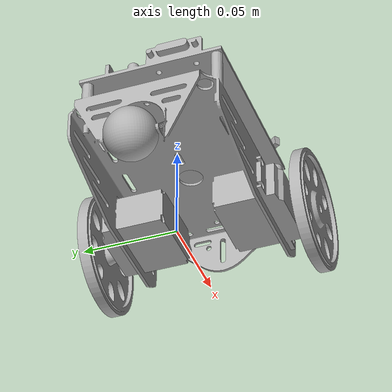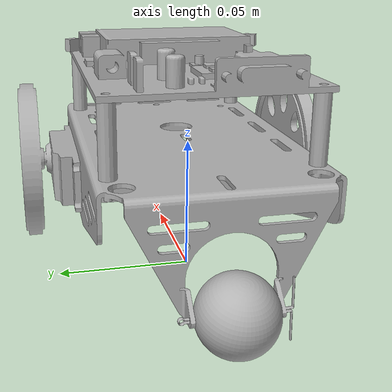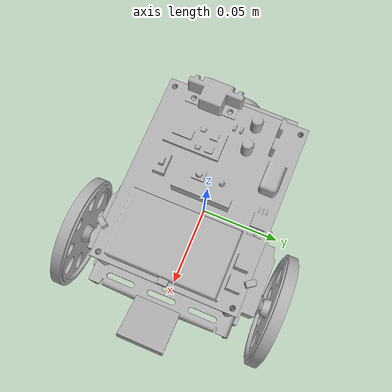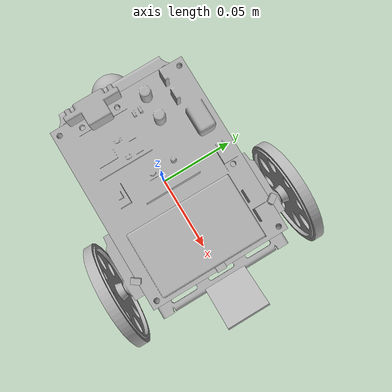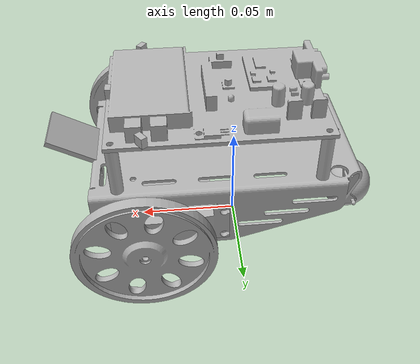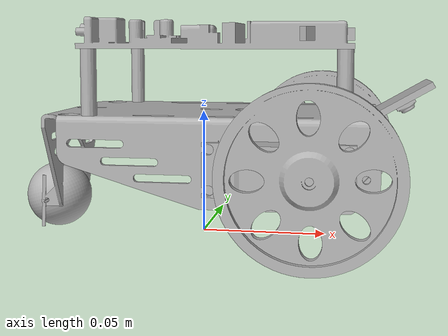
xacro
<?xml version="1.0" ?>
<robot name="boebot" xmlns:xacro="http://www.ros.org/wiki/xacro">

<xacro:include filename="$(find boebot_description)/urdf/materials.xacro" />
<xacro:include filename="$(find boebot_description)/urdf/boebot.trans" />
<xacro:include filename="$(find boebot_description)/urdf/boebot.gazebo" />

<link name="base_link">
  <inertial>
    <origin rpy="0 0 0" xyz="0.0070625612279852845 -6.874357865283451e-06 0.04574754124785928"/>
    <mass value="0.20308165049164978"/>
    <inertia ixx="0.000187" ixy="-0.0" ixz="-1e-06" iyy="0.000368" iyz="-0.0" izz="0.00051"/>
  </inertial>
  <visual>
    <origin rpy="0 0 0" xyz="0 0 0"/>
    <geometry>
      <mesh filename="package://boebot_description/meshes/base_link.stl" scale="0.001 0.001 0.001"/>
    </geometry>
    <material name="silver"/>
  </visual>
  <collision>
    <origin rpy="0 0 0" xyz="0 0 0"/>
    <geometry>
      <mesh filename="package://boebot_description/meshes/base_link.stl" scale="0.001 0.001 0.001"/>
    </geometry>
  </collision>
</link>

<link name="motor_right_1">
  <inertial>
    <origin rpy="0 0 0" xyz="-0.019672257084668257 0.008154203088266192 -2.8105041564863154e-07"/>
    <mass value="0.23215241019968272"/>
    <inertia ixx="3.3e-05" ixy="1e-06" ixz="0.0" iyy="4e-05" iyz="0.0" izz="5.8e-05"/>
  </inertial>
  <visual>
    <origin rpy="0 0 0" xyz="-0.0545 0.04 -0.032207"/>
    <geometry>
      <mesh filename="package://boebot_description/meshes/motor_right_1.stl" scale="0.001 0.001 0.001"/>
    </geometry>
    <material name="silver"/>
  </visual>
  <collision>
    <origin rpy="0 0 0" xyz="-0.0545 0.04 -0.032207"/>
    <geometry>
      <mesh filename="package://boebot_description/meshes/motor_right_1.stl" scale="0.001 0.001 0.001"/>
    </geometry>
  </collision>
</link>

<link name="motor_left_1">
  <inertial>
    <origin rpy="0 0 0" xyz="-0.019672257084668195 -0.00815420308826622 -2.8105041564863154e-07"/>
    <mass value="0.23215241019968264"/>
    <inertia ixx="3.3e-05" ixy="-1e-06" ixz="0.0" iyy="4e-05" iyz="-0.0" izz="5.8e-05"/>
  </inertial>
  <visual>
    <origin rpy="0 0 0" xyz="-0.0545 -0.04 -0.032207"/>
    <geometry>
      <mesh filename="package://boebot_description/meshes/motor_left_1.stl" scale="0.001 0.001 0.001"/>
    </geometry>
    <material name="silver"/>
  </visual>
  <collision>
    <origin rpy="0 0 0" xyz="-0.0545 -0.04 -0.032207"/>
    <geometry>
      <mesh filename="package://boebot_description/meshes/motor_left_1.stl" scale="0.001 0.001 0.001"/>
    </geometry>
  </collision>
</link>

<link name="caster_1">
  <inertial>
    <origin rpy="0 0 0" xyz="3.9442278650103635e-07 0.013416407866003247 -2.4895176421041443e-07"/>
    <mass value="0.07940850571968437"/>
    <inertia ixx="6e-06" ixy="-0.0" ixz="0.0" iyy="6e-06" iyz="-0.0" izz="6e-06"/>
  </inertial>
  <visual>
    <origin rpy="0 0 0" xyz="0.063167 0.0135 -0.013506"/>
    <geometry>
      <mesh filename="package://boebot_description/meshes/caster_1.stl" scale="0.001 0.001 0.001"/>
    </geometry>
    <material name="silver"/>
  </visual>
  <collision>
    <origin rpy="0 0 0" xyz="0.063167 0.0135 -0.013506"/>
    <geometry>
      <mesh filename="package://boebot_description/meshes/caster_1.stl" scale="0.001 0.001 0.001"/>
    </geometry>
  </collision>
</link>

<link name="arduino_1">
  <inertial>
    <origin rpy="0 0 0" xyz="-0.03893013827845351 0.03468787507540039 0.004002916570544371"/>
    <mass value="0.04221819460006796"/>
    <inertia ixx="1.7e-05" ixy="-1e-06" ixz="-1e-06" iyy="3.8e-05" iyz="-0.0" izz="5.4e-05"/>
  </inertial>
  <visual>
    <origin rpy="0 0 0" xyz="-0.0575 0.035 -0.075707"/>
    <geometry>
      <mesh filename="package://boebot_description/meshes/arduino_1.stl" scale="0.001 0.001 0.001"/>
    </geometry>
    <material name="silver"/>
  </visual>
  <collision>
    <origin rpy="0 0 0" xyz="-0.0575 0.035 -0.075707"/>
    <geometry>
      <mesh filename="package://boebot_description/meshes/arduino_1.stl" scale="0.001 0.001 0.001"/>
    </geometry>
  </collision>
</link>

<link name="obstacle_sensor_1">
  <inertial>
    <origin rpy="0 0 0" xyz="0.0014998834009434178 -2.6259291547496913e-07 -2.8105041563475375e-07"/>
    <mass value="0.0005887499999999996"/>
    <inertia ixx="0.0" ixy="0.0" ixz="-0.0" iyy="0.0" iyz="0.0" izz="0.0"/>
  </inertial>
  <visual>
    <origin rpy="0 0 0" xyz="-0.057833 0.002449 -0.081207"/>
    <geometry>
      <mesh filename="package://boebot_description/meshes/obstacle_sensor_1.stl" scale="0.001 0.001 0.001"/>
    </geometry>
    <material name="silver"/>
  </visual>
  <collision>
    <origin rpy="0 0 0" xyz="-0.057833 0.002449 -0.081207"/>
    <geometry>
      <mesh filename="package://boebot_description/meshes/obstacle_sensor_1.stl" scale="0.001 0.001 0.001"/>
    </geometry>
  </collision>
</link>

<link name="obstacle_sensor_left">
  <inertial>
    <origin rpy="0 0 0" xyz="0.0014998834009434178 -2.6259291547496913e-07 -2.8105041563475375e-07"/>
    <mass value="0.0005887499999999996"/>
    <inertia ixx="0.0" ixy="0.0" ixz="-0.0" iyy="0.0" iyz="0.0" izz="0.0"/>
  </inertial>
  <visual>
    <origin rpy="0 0 0" xyz="-0.057833 0.002449 -0.081207"/>
    <geometry>
      <mesh filename="package://boebot_description/meshes/obstacle_sensor_1.stl" scale="0.001 0.001 0.001"/>
    </geometry>
    <material name="silver"/>
  </visual>
  <collision>
    <origin rpy="0 0 0" xyz="-0.057833 0.002449 -0.081207"/>
    <geometry>
      <mesh filename="package://boebot_description/meshes/obstacle_sensor_1.stl" scale="0.001 0.001 0.001"/>
    </geometry>
  </collision>
</link>

<link name="obstacle_sensor_right">
  <inertial>
    <origin rpy="0 0 0" xyz="0.0014998834009434178 -2.6259291547496913e-07 -2.8105041563475375e-07"/>
    <mass value="0.0005887499999999996"/>
    <inertia ixx="0.0" ixy="0.0" ixz="-0.0" iyy="0.0" iyz="0.0" izz="0.0"/>
  </inertial>
  <visual>
    <origin rpy="0 0 0" xyz="-0.057833 0.002449 -0.081207"/>
    <geometry>
      <mesh filename="package://boebot_description/meshes/obstacle_sensor_1.stl" scale="0.001 0.001 0.001"/>
    </geometry>
    <material name="silver"/>
  </visual>
  <collision>
    <origin rpy="0 0 0" xyz="-0.057833 0.002449 -0.081207"/>
    <geometry>
      <mesh filename="package://boebot_description/meshes/obstacle_sensor_1.stl" scale="0.001 0.001 0.001"/>
    </geometry>
  </collision>
</link>

<link name="camera_1">
  <inertial>
    <origin rpy="0 0 0" xyz="0.001557194993891009 4.099625037096615e-13 -2.8105041563475375e-07"/>
    <mass value="0.0014423114923478612"/>
    <inertia ixx="0.0" ixy="0.0" ixz="-0.0" iyy="0.0" iyz="-0.0" izz="0.0"/>
  </inertial>
  <visual>
    <origin rpy="0 0 0" xyz="-0.070763 0.0 -0.063207"/>
    <geometry>
      <mesh filename="package://boebot_description/meshes/camera_1.stl" scale="0.001 0.001 0.001"/>
    </geometry>
    <material name="silver"/>
  </visual>
  <collision>
    <origin rpy="0 0 0" xyz="-0.070763 0.0 -0.063207"/>
    <geometry>
      <mesh filename="package://boebot_description/meshes/camera_1.stl" scale="0.001 0.001 0.001"/>
    </geometry>
  </collision>
</link>

<link name="wheel_left_1">
  <inertial>
    <origin rpy="0 0 0" xyz="4.959898559711573e-07 -0.005543299964448488 -2.788678334572636e-07"/>
    <mass value="0.08985319146989384"/>
    <inertia ixx="2.7e-05" ixy="0.0" ixz="0.0" iyy="5.4e-05" iyz="0.0" izz="2.7e-05"/>
  </inertial>
  <visual>
    <origin rpy="0 0 0" xyz="-0.04638 0.0525 -0.032207"/>
    <geometry>
      <mesh filename="package://boebot_description/meshes/wheel_left_1.stl" scale="0.001 0.001 0.001"/>
    </geometry>
    <material name="silver"/>
  </visual>
  <collision>
    <origin rpy="0 0 0" xyz="-0.04638 0.0525 -0.032207"/>
    <geometry>
      <mesh filename="package://boebot_description/meshes/wheel_left_1.stl" scale="0.001 0.001 0.001"/>
    </geometry>
  </collision>
</link>

<link name="wheel_right_1">
  <inertial>
    <origin rpy="0 0 0" xyz="4.932761595438651e-07 0.005543351469859702 -2.8066909178031674e-07"/>
    <mass value="0.08985616844400865"/>
    <inertia ixx="2.7e-05" ixy="0.0" ixz="-0.0" iyy="5.4e-05" iyz="0.0" izz="2.7e-05"/>
  </inertial>
  <visual>
    <origin rpy="0 0 0" xyz="-0.04638 -0.0525 -0.032207"/>
    <geometry>
      <mesh filename="package://boebot_description/meshes/wheel_right_1.stl" scale="0.001 0.001 0.001"/>
    </geometry>
    <material name="silver"/>
  </visual>
  <collision>
    <origin rpy="0 0 0" xyz="-0.04638 -0.0525 -0.032207"/>
    <geometry>
      <mesh filename="package://boebot_description/meshes/wheel_right_1.stl" scale="0.001 0.001 0.001"/>
    </geometry>
  </collision>
</link>

<link name="camera_circuit_1">
  <inertial>
    <origin rpy="0 0 0" xyz="0.0012503999999999987 -6.277294225387258e-17 0.012499718949584362"/>
    <mass value="0.012265624999999999"/>
    <inertia ixx="1e-06" ixy="0.0" ixz="0.0" iyy="1e-06" iyz="-0.0" izz="1e-06"/>
  </inertial>
  <visual>
    <origin rpy="0 0 0" xyz="-0.068263 0.0 -0.050707"/>
    <geometry>
      <mesh filename="package://boebot_description/meshes/camera_circuit_1.stl" scale="0.001 0.001 0.001"/>
    </geometry>
    <material name="silver"/>
  </visual>
  <collision>
    <origin rpy="0 0 0" xyz="-0.068263 0.0 -0.050707"/>
    <geometry>
      <mesh filename="package://boebot_description/meshes/camera_circuit_1.stl" scale="0.001 0.001 0.001"/>
    </geometry>
  </collision>
</link>

<joint name="Rigid12" type="fixed">
  <origin rpy="0 0 0" xyz="0.0545 -0.04 0.032207"/>
  <parent link="base_link"/>
  <child link="motor_right_1"/>
</joint>

<joint name="Rigid13" type="fixed">
  <origin rpy="0 0 0" xyz="0.0545 0.04 0.032207"/>
  <parent link="base_link"/>
  <child link="motor_left_1"/>
</joint>

<joint name="Rigid14" type="fixed">
  <origin rpy="0 0 0" xyz="-0.063167 -0.0135 0.013506"/>
  <parent link="base_link"/>
  <child link="caster_1"/>
</joint>

<joint name="Rigid15" type="fixed">
  <origin rpy="0 0 0" xyz="0.0575 -0.035 0.075707"/>
  <parent link="base_link"/>
  <child link="arduino_1"/>
</joint>

<joint name="Rigid16" type="fixed">
  <origin rpy="0 0 0" xyz="0.000333 0.035051 0.0055"/>
  <parent link="arduino_1"/>
  <child link="obstacle_sensor_1"/>
</joint>

<joint name="Rigid26" type="fixed">
  <origin rpy="0 0 0.628319" xyz="-0.014667 0.072551 0.0055"/>
  <parent link="arduino_1"/>
  <child link="obstacle_sensor_left"/>
</joint>

<joint name="Rigid36" type="fixed">
  <origin rpy="0 0 -0.628319" xyz="-0.014667 -0.002449 0.0055"/>
  <parent link="arduino_1"/>
  <child link="obstacle_sensor_right"/>
</joint>

<joint name="Rigid17" type="fixed">
  <origin rpy="0 0 0" xyz="0.0025 0.0 0.0125"/>
  <parent link="camera_circuit_1"/>
  <child link="camera_1"/>
</joint>

<joint name="rev_right" type="continuous">
  <origin rpy="0 0 0" xyz="-0.00812 -0.0125 0.0"/>
  <parent link="motor_right_1"/>
  <child link="wheel_left_1"/>
  <axis xyz="-0.0 1.0 0.0"/>
</joint>

<joint name="rev_left" type="continuous">
  <origin rpy="0 0 0" xyz="-0.00812 0.0125 0.0"/>
  <parent link="motor_left_1"/>
  <child link="wheel_right_1"/>
  <axis xyz="0.0 1.0 0.0"/>
</joint>

<joint name="Rigid20" type="fixed">
  <origin rpy="0 1.0472 0" xyz="0.068263 0.0 0.050707"/>
  <parent link="base_link"/>
  <child link="camera_circuit_1"/>
</joint>

</robot>

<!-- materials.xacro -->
<robot name="boebot" xmlns:xacro="http://www.ros.org/wiki/xacro" >

<material name="silver">
  <color rgba="0.700 0.700 0.700 1.000"/>
</material>

</robot>

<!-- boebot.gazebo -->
<robot name="boebot" xmlns:xacro="http://www.ros.org/wiki/xacro" >

<xacro:property name="body_color" value="Gazebo/Grey" />
<xacro:property name="motor_color" value="Gazebo/DarkGrey" />
<xacro:property name="wheel_color" value="Gazebo/Black" />
<xacro:property name="circuit_color" value="Gazebo/Green" />
<xacro:property name="sensor_color" value="Gazebo/Blue" />

<gazebo>
  <plugin filename="libgazebo_ros_control.so" name="control"/>
</gazebo>

<gazebo reference="base_link">
  <material>${body_color}</material>
  <mu1>0.2</mu1>
  <mu2>0.2</mu2>
  <selfCollide>true</selfCollide>
  <gravity>true</gravity>
</gazebo>

<gazebo reference="motor_right_1">
  <material>${motor_color}</material>
  <mu1>0.2</mu1>
  <mu2>0.2</mu2>
  <selfCollide>true</selfCollide>
</gazebo>

<gazebo reference="motor_left_1">
  <material>${motor_color}</material>
  <mu1>0.2</mu1>
  <mu2>0.2</mu2>
  <selfCollide>true</selfCollide>
</gazebo>

<gazebo reference="caster_1">
  <material>${wheel_color}</material>
  <mu1>0.1</mu1>
  <mu2>0.1</mu2>
  <selfCollide>true</selfCollide>
</gazebo>

<gazebo reference="arduino_1">
  <material>${circuit_color}</material>
  <mu1>0.2</mu1>
  <mu2>0.2</mu2>
  <selfCollide>true</selfCollide>
</gazebo>

<gazebo reference="obstacle_sensor_1">
  <material>${sensor_color}</material>
  <mu1>0.2</mu1>
  <mu2>0.2</mu2>
  <selfCollide>true</selfCollide>
</gazebo>

<gazebo reference="obstacle_sensor_left">
  <material>${sensor_color}</material>
  <mu1>0.2</mu1>
  <mu2>0.2</mu2>
  <selfCollide>true</selfCollide>
</gazebo>

<gazebo reference="obstacle_sensor_right">
  <material>${sensor_color}</material>
  <mu1>0.2</mu1>
  <mu2>0.2</mu2>
  <selfCollide>true</selfCollide>
</gazebo>

<gazebo reference="camera_1">
  <material>${wheel_color}</material>
  <mu1>0.2</mu1>
  <mu2>0.2</mu2>
  <selfCollide>true</selfCollide>
</gazebo>

<gazebo reference="wheel_left_1">
  <material>${wheel_color}</material>
  <mu1>1000.0</mu1>
  <mu2>1000.0</mu2>
  <selfCollide>true</selfCollide>
</gazebo>

<gazebo reference="wheel_right_1">
  <material>${wheel_color}</material>
  <mu1>1000.0</mu1>
  <mu2>1000.0</mu2>
  <selfCollide>true</selfCollide>
</gazebo>

<gazebo reference="camera_circuit_1">
  <material>${circuit_color}</material>
  <mu1>0.2</mu1>
  <mu2>0.2</mu2>
  <selfCollide>true</selfCollide>
</gazebo>

<gazebo>
    <plugin name="differential_drive_controller" filename="libgazebo_ros_diff_drive.so">
      <updateRate>20</updateRate>
      <robotBaseFrame>base_link</robotBaseFrame>
      <leftJoint>rev_left</leftJoint>
      <rightJoint>rev_right</rightJoint>
      <wheelSeparation>0.116</wheelSeparation>
      <wheelDiameter>0.065</wheelDiameter>
      <wheelAcceleration>1.0</wheelAcceleration>
      <wheelTorque>20</wheelTorque>
      <commandTopic>cmd_vel</commandTopic>
      <odometryTopic>odom</odometryTopic>
      <odometryFrame>odom</odometryFrame>
      <odometrySource>1</odometrySource>
      <publishWheelTF>false</publishWheelTF>
      <publishOdomTF>true</publishOdomTF>
      <publishOdom>true</publishOdom>
      <publishWheelJointState>true</publishWheelJointState>
      <legacyMode>false</legacyMode>
      <alwaysOn>true</alwaysOn>
    </plugin>
  </gazebo>

  <gazebo reference="camera_1">
    <sensor type="camera" name="camera">
      <update_rate>30.0</update_rate>
      <camera name="head">
        <horizontal_fov>1.3962634</horizontal_fov>
        <image>
          <width>800</width>
          <height>800</height>
          <format>R8G8B8</format>
        </image>
        <clip>
          <near>0.02</near>
          <far>300</far>
        </clip>
        <noise>
          <type>gaussian</type>
          <mean>0.0</mean>
          <stddev>0.007</stddev>
        </noise>
      </camera>
      <plugin name="camera_controller" filename="libgazebo_ros_camera.so">
        <alwaysOn>true</alwaysOn>
        <updateRate>0.0</updateRate>
        <cameraName>autobot/camera</cameraName>
        <imageTopicName>image_raw</imageTopicName>
        <cameraInfoTopicName>camera_info</cameraInfoTopicName>
        <frameName>camera_1</frameName>
        <hackBaseline>0.07</hackBaseline>
        <distortionK1>0.0</distortionK1>
        <distortionK2>0.0</distortionK2>
        <distortionK3>0.0</distortionK3>
        <distortionT1>0.0</distortionT1>
        <distortionT2>0.0</distortionT2>
      </plugin>
    </sensor>
  </gazebo>

  <gazebo reference="obstacle_sensor_1">
   <sensor type="ray" name="obstacle_sensor">
      <pose>0 0 0 0 0 0</pose>
      <visualize>true</visualize>
      <update_rate>40</update_rate>
      <ray>
        <scan>
          <horizontal>
            <samples>10</samples>
            <resolution>1</resolution>
            <min_angle>-0.314159</min_angle>
            <max_angle>0.314159</max_angle>
          </horizontal>
        </scan>
        <range>
          <min>0.01</min>
          <max>0.5</max>
          <resolution>0.01</resolution>
        </range>
        <noise>
          <type>gaussian</type>
          <mean>0.0</mean>
          <stddev>0.01</stddev>
        </noise>
      </ray>
      <plugin name="gazebo_ros_head_hokuyo_controller" filename="libgazebo_ros_laser.so">
        <topicName>autobot/obstacle_sensor_front</topicName>
        <frameName>obstacle_sensor_1</frameName>
      </plugin>
    </sensor>
   </gazebo>

   <gazebo reference="obstacle_sensor_left">
   <sensor type="ray" name="obstacle_sensor_left">
      <pose>0 0 0 0 0 0</pose>
      <visualize>true</visualize>
      <update_rate>40</update_rate>
      <ray>
        <scan>
          <horizontal>
            <samples>10</samples>
            <resolution>1</resolution>
            <min_angle>-0.314159</min_angle>
            <max_angle>0.314159</max_angle>
          </horizontal>
        </scan>
        <range>
          <min>0.01</min>
          <max>0.5</max>
          <resolution>0.01</resolution>
        </range>
        <noise>
          <type>gaussian</type>
          <mean>0.0</mean>
          <stddev>0.01</stddev>
        </noise>
      </ray>
      <plugin name="gazebo_ros_head_hokuyo_controller" filename="libgazebo_ros_laser.so">
        <topicName>autobot/obstacle_sensor_left</topicName>
        <frameName>obstacle_sensor_left</frameName>
      </plugin>
    </sensor>
   </gazebo>

   <gazebo reference="obstacle_sensor_right">
   <sensor type="ray" name="obstacle_sensor_right">
      <pose>0 0 0 0 0 0</pose>
      <visualize>true</visualize>
      <update_rate>40</update_rate>
      <ray>
        <scan>
          <horizontal>
            <samples>10</samples>
            <resolution>1</resolution>
            <min_angle>-0.314159</min_angle>
            <max_angle>0.314159</max_angle>
          </horizontal>
        </scan>
        <range>
          <min>0.01</min>
          <max>0.5</max>
          <resolution>0.01</resolution>
        </range>
        <noise>
          <type>gaussian</type>
          <mean>0.0</mean>
          <stddev>0.01</stddev>
        </noise>
      </ray>
      <plugin name="gazebo_ros_head_hokuyo_controller" filename="libgazebo_ros_laser.so">
        <topicName>autobot/obstacle_sensor_right</topicName>
        <frameName>obstacle_sensor_right</frameName>
      </plugin>
    </sensor>
   </gazebo>

</robot>
